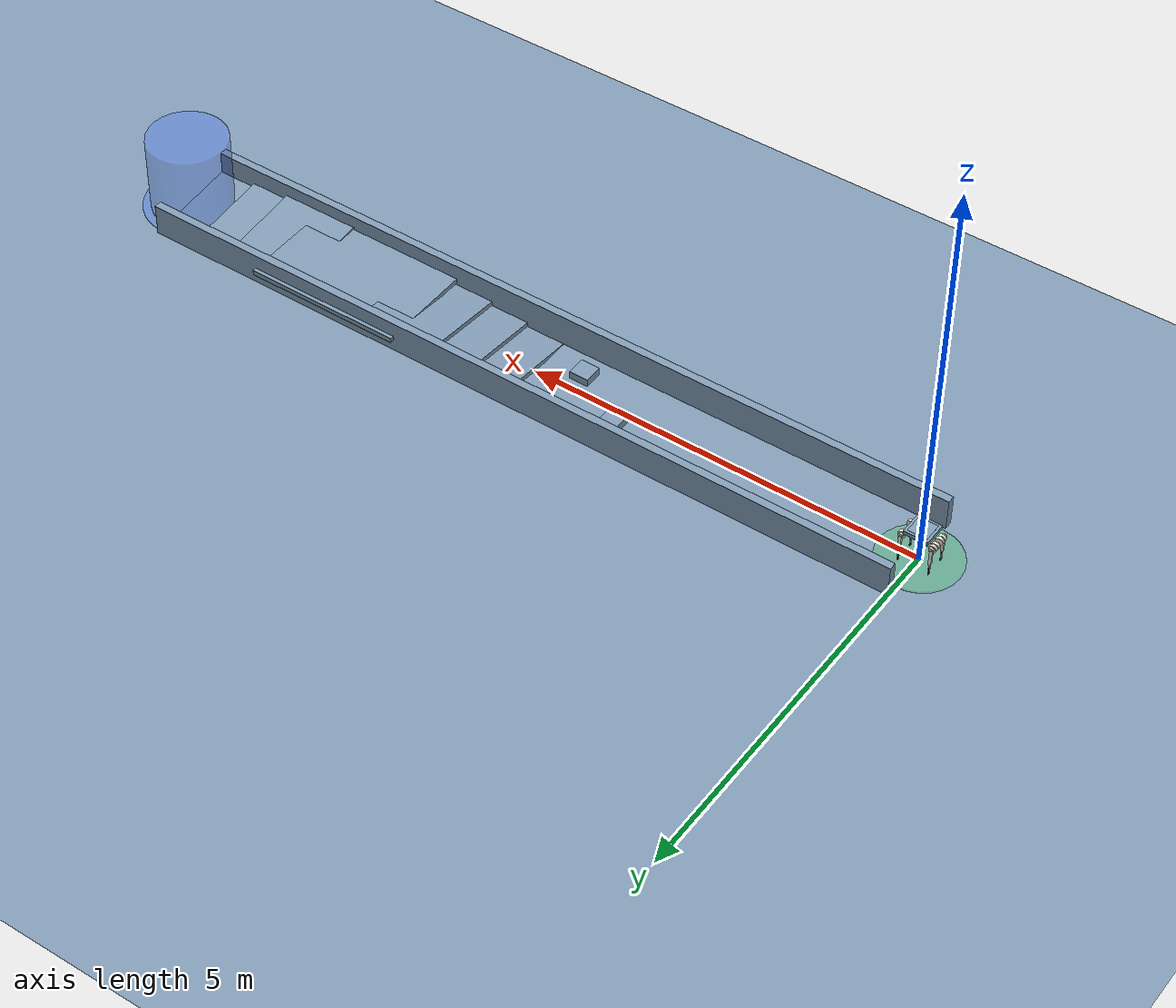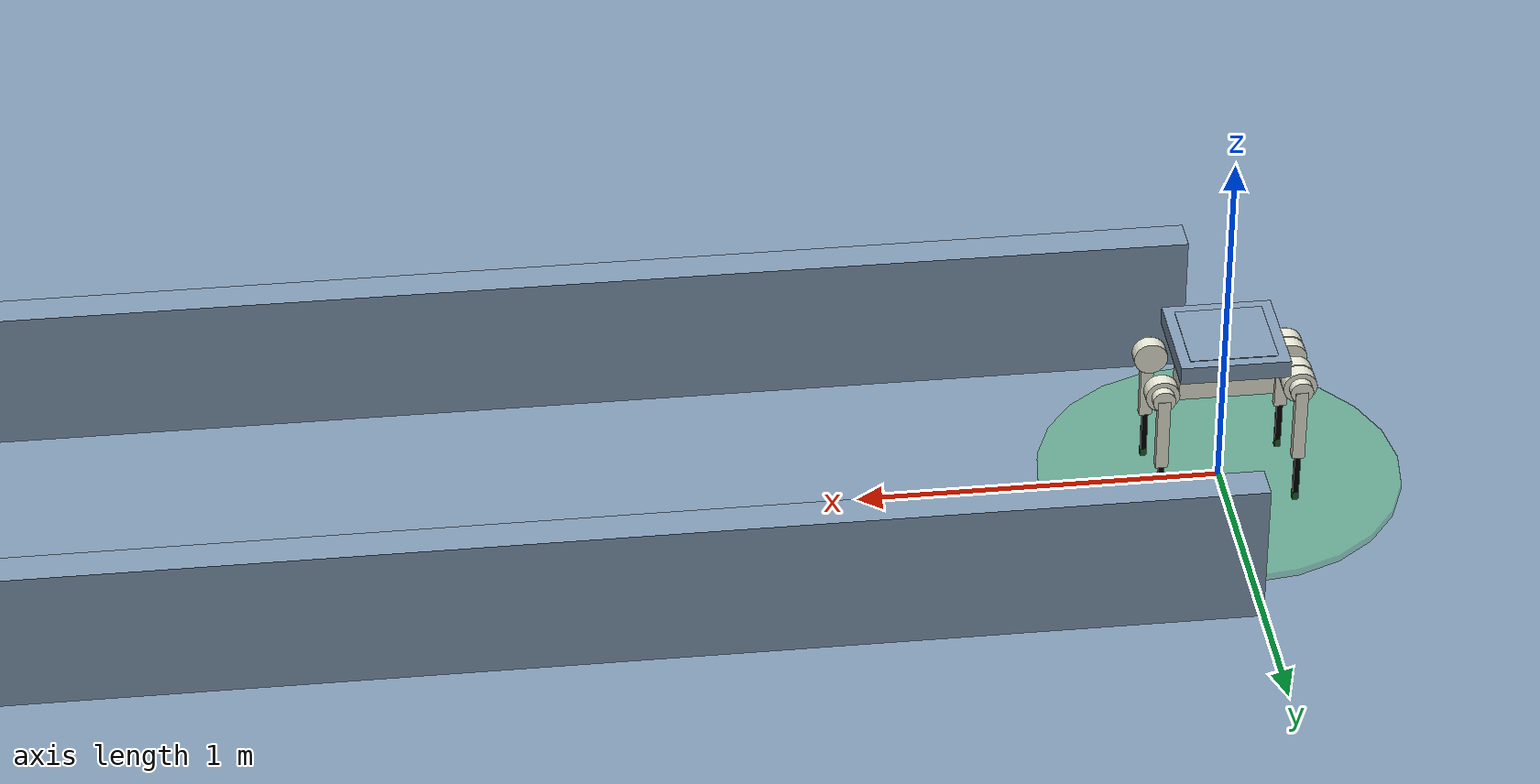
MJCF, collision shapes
<mujoco model="go1_pizza_stage2">
    <compiler angle="radian" meshdir="meshes" autolimits="true"/>

    <option timestep="0.005" solver="PGS" gravity="0 0 -9.81"/>

    <default>
        <geom contype="1" conaffinity="1" friction="0.6 0.3 0.3" rgba="0.5 0.6 0.7 1" group="0"/>
        <motor ctrlrange="-33.5 33.5" ctrllimited="true"/>
        <joint damping="0.01" armature="0.01" frictionloss="0.2" />
    </default>

    <asset>
        <mesh name="trunk" file="trunk.obj" />
        <mesh name="hip" file="hip.obj" />
        <mesh name="thigh_mirror" file="thigh_mirror.obj" />
        <mesh name="calf" file="calf.obj" />
        <mesh name="thigh" file="thigh.obj" />

        <texture type="skybox" builtin="gradient" rgb1="1 1 1" rgb2="1 1 1" width="512" height="512"/>
        <texture type="2d" name="groundplane" builtin="checker" rgb1="1 1 1" rgb2="0.96 0.96 0.96" width="512" height="512"/>
        <texture type="2d" name="obstacle_checker" builtin="checker" rgb1="0.9 0.9 0.9" rgb2="0.8 0.8 0.8" width="512" height="512"/>
        <texture type="2d" name="pizza_texture" file="pizza.png"/>
        <material name="groundplane" texture="groundplane" texrepeat="30 30" reflectance="0.1"/>
        <material name="grid_material" texture="obstacle_checker" texrepeat="3 3"/>
        <material name="pizza_box" rgba="0.85 0.2 0.1 1"/>
        <material name="pizza_top" texture="pizza_texture" texrepeat="1 1"/>
    </asset>

    <visual>
        <rgba com="0.502 1.0 0 0.5" contactforce="0.98 0.4 0.4 0.7" contactpoint="1.0 1.0 0.6 0.4"/>
        <scale com="0.2" forcewidth="0.035" contactwidth="0.10" contactheight="0.04"/>
    </visual>

    <worldbody>
        <light directional="true" diffuse=".8 .8 .8" pos="0 0 10" dir="0 0 -10"/>
        <camera name="track" mode="trackcom" pos="0 -1.3 1.6" xyaxes="1 0 0 0 0.707 0.707"/>
        <geom name="floor" size="0 0 0.05" type="plane" material="groundplane"/>

        <!-- Start Zone -->
        <geom name="start_zone" type="cylinder" pos="0 0 0.01" size="0.5 0.01" rgba="0.2 0.8 0.3 0.3" contype="0" conaffinity="0"/>

        <!-- STAGE 2: Easier Obstacle Course with Full Walls -->

        <!-- Full-length walls along the entire path (0-10m) -->
        <geom name="wall_left_full" type="box" pos="5 0.6 0.2" size="5 0.05 0.2" material="grid_material"/>
        <geom name="wall_right_full" type="box" pos="5 -0.6 0.2" size="5 0.05 0.2" material="grid_material"/>

        <!-- Section 2: Fewer and smaller obstacles (3-5m) -->
        <geom name="obstacle_1" type="box" pos="3.8 0.2 0.05" size="0.12 0.12 0.05" material="grid_material"/>
        <geom name="obstacle_2" type="box" pos="4.5 -0.25 0.05" size="0.12 0.12 0.05" material="grid_material"/>

        <!-- Section 3: Gentle uphill ramp (5-7m) -->
        <geom name="ramp_1" type="box" pos="5.5 0 0.03" size="0.5 0.6 0.03" quat="0.9986 0.0523 0 0" material="grid_material"/>
        <geom name="ramp_2" type="box" pos="6.0 0 0.09" size="0.5 0.6 0.03" quat="0.9986 0.0523 0 0" material="grid_material"/>
        <geom name="ramp_3" type="box" pos="6.5 0 0.15" size="0.5 0.6 0.03" quat="0.9986 0.0523 0 0" material="grid_material"/>

        <!-- Section 4: Lower platform (7-8m) -->
        <geom name="platform" type="box" pos="7.5 0 0.18" size="1.0 0.7 0.03" material="grid_material"/>

        <!-- Section 5: Gentle downhill (8-10m) -->
        <geom name="down_1" type="box" pos="8.5 0 0.15" size="0.5 0.6 0.03" quat="0.9986 -0.0523 0 0" material="grid_material"/>
        <geom name="down_2" type="box" pos="9.0 0 0.09" size="0.5 0.6 0.03" quat="0.9986 -0.0523 0 0" material="grid_material"/>
        <geom name="down_3" type="box" pos="9.5 0 0.03" size="0.5 0.6 0.03" quat="0.9986 -0.0523 0 0" material="grid_material"/>

        <!-- Goal Zone -->
        <geom name="goal_zone" type="cylinder" pos="10 0 0.01" size="0.6 0.01" rgba="0.2 0.4 1 0.3" contype="0" conaffinity="0"/>

        <!-- Goal Marker (cylinder beacon) -->
        <geom name="goal_marker" type="cylinder" pos="10 0 0.5" size="0.5 0.5" rgba="0.2 0.4 1 0.3" contype="0" conaffinity="0"/>

        <!-- PIZZA BOX -->
        <body name="pizza_box" pos="0 0 0.44">
            <inertial pos="0 0 0" mass="0.5" diaginertia="0.005 0.005 0.001" />
            <joint type="free" />
            <geom name="pizza_box_geom" type="box" size="0.15 0.15 0.025" material="pizza_box" friction="1.5 0.8 0.8" />
            <geom name="pizza_label" type="box" size="0.12 0.12 0.026" pos="0 0 0.001" material="pizza_top" contype="0" conaffinity="0" />
        </body>

        <body name="trunk" pos="0 0 0.35">
            <inertial pos="0.0116053 0.00442221 0.000106692" quat="0.0111438 0.707126 -0.00935374 0.706938" mass="4.801" diaginertia="0.0447997 0.0366257 0.0162187" />
            <joint type="free" />
            <geom type="mesh" contype="0" conaffinity="0" group="1" rgba="0.913725 0.913725 0.847059 1" mesh="trunk" />
            <geom size="0.13 0.04675 0.057" type="box" rgba="0.913725 0.913725 0.847059 1" friction="1.5 0.8 0.8" />
            <geom size="0.0005 0.0005 0.0005" pos="-0.01592 -0.06659 -0.00617" type="box" contype="0" conaffinity="0" group="1" rgba="0.8 0 0 0" />
            <geom size="0.0005 0.0005 0.0005" pos="-0.01592 -0.06659 -0.00617" type="box" rgba="0.8 0 0 0" />
            <site name="imu" pos="0 0 0"/>

            <body name="FR_hip" pos="0.1881 -0.04675 0">
                <inertial pos="-0.00406411 -0.0193463 4.50733e-06" quat="0.467526 0.531662 -0.466259 0.530431" mass="0.679292" diaginertia="0.00131334 0.00122648 0.000728484" />
                <joint name="FR_hip_joint" pos="0 0 0" axis="1 0 0" limited="true" range="-0.802851 0.802851" />
                <geom quat="0 1 0 0" type="mesh" contype="0" conaffinity="0" group="1" rgba="0.913725 0.913725 0.847059 1" mesh="hip" />
                <geom size="0.046 0.02" pos="0 -0.045 0" quat="0.707107 0.707107 0 0" type="cylinder" rgba="0.913725 0.913725 0.847059 0" />
                <geom size="0.031 0.02" pos="0 -0.07 0" quat="0.707107 0.707107 0 0" type="cylinder" rgba="0.913725 0.913725 0.847059 0" />

                <body name="FR_thigh" pos="0 -0.08 0">
                    <inertial pos="-0.003468 0.018947 -0.032736" quat="0.999266 0.00067676 -0.0382978 0.000639813" mass="0.898919" diaginertia="0.00542178 0.00514246 0.000998869" />
                    <joint name="FR_thigh_joint" pos="0 0 0" axis="0 1 0" limited="true" range="-1.0472 4.18879" />
                    <geom type="mesh" contype="0" conaffinity="0" group="1" rgba="0.913725 0.913725 0.847059 1" mesh="thigh_mirror" />
                    <geom size="0.1065 0.01225 0.017" pos="0 0 -0.1065" quat="0.707107 0 0.707107 0" type="box" rgba="0.913725 0.913725 0.847059 0" />
                    <body name="FR_calf" pos="0 0 -0.213">
                        <inertial pos="0.00455603 0.0009473 -0.147239" quat="0.762045 0.00970173 0.0180098 0.647201" mass="0.218015" diaginertia="0.00399678 0.00398122 3.99428e-05" />
                        <joint name="FR_calf_joint" pos="0 0 0" axis="0 1 0" limited="true" range="-2.69653 -0.916298" />
                        <geom type="mesh" contype="0" conaffinity="0" group="1" rgba="0 0 0 1" mesh="calf" />
                        <geom size="0.1065 0.008 0.008" pos="0 0 -0.1065" quat="0.707107 0 0.707107 0" type="box" rgba="0 0 0 0" />
                        <geom size="0.01" pos="0 0 -0.213" contype="0" conaffinity="0" group="1" rgba="0 0 0 1" />
                        <geom size="0.02" pos="0 0 -0.213" rgba="0 0 0 1" />
                    </body>
                </body>
            </body>
            <body name="FL_hip" pos="0.1881 0.04675 0">
                <inertial pos="-0.00406411 0.0193463 4.50733e-06" quat="0.531662 0.467526 -0.530431 0.466259" mass="0.679292" diaginertia="0.00131334 0.00122648 0.000728484" />
                <joint name="FL_hip_joint" pos="0 0 0" axis="1 0 0" limited="true" range="-0.802851 0.802851" />
                <geom type="mesh" contype="0" conaffinity="0" group="1" rgba="0.913725 0.913725 0.847059 1" mesh="hip" />
                <geom size="0.046 0.02" pos="0 0.045 0" quat="0.707107 0.707107 0 0" type="cylinder" rgba="0.913725 0.913725 0.847059 0" />
                <geom size="0.031 0.02" pos="0 0.07 0" quat="0.707107 0.707107 0 0" type="cylinder" rgba="0.913725 0.913725 0.847059 0" />

                <body name="FL_thigh" pos="0 0.08 0">
                    <inertial pos="-0.003468 -0.018947 -0.032736" quat="0.999266 -0.00067676 -0.0382978 -0.000639813" mass="0.898919" diaginertia="0.00542178 0.00514246 0.000998869" />
                    <joint name="FL_thigh_joint" pos="0 0 0" axis="0 1 0" limited="true" range="-1.0472 4.18879" />
                    <geom type="mesh" contype="0" conaffinity="0" group="1" rgba="0.913725 0.913725 0.847059 1" mesh="thigh" />
                    <geom size="0.1065 0.01225 0.017" pos="0 0 -0.1065" quat="0.707107 0 0.707107 0" type="box" rgba="0.913725 0.913725 0.847059 0" />
                    <body name="FL_calf" pos="0 0 -0.213">
                        <inertial pos="0.00455603 0.0009473 -0.147239" quat="0.762045 0.00970173 0.0180098 0.647201" mass="0.218015" diaginertia="0.00399678 0.00398122 3.99428e-05" />
                        <joint name="FL_calf_joint" pos="0 0 0" axis="0 1 0" limited="true" range="-2.69653 -0.916298" />
                        <geom type="mesh" contype="0" conaffinity="0" group="1" rgba="0 0 0 1" mesh="calf" />
                        <geom size="0.1065 0.008 0.008" pos="0 0 -0.1065" quat="0.707107 0 0.707107 0" type="box" rgba="0 0 0 0" />
                        <geom size="0.01" pos="0 0 -0.213" contype="0" conaffinity="0" group="1" rgba="0 0 0 1" />
                        <geom size="0.02" pos="0 0 -0.213" rgba="0 0 0 1" />
                    </body>
                </body>
            </body>
            <body name="RR_hip" pos="-0.1881 -0.04675 0">
                <inertial pos="0.00406411 -0.0193463 4.50733e-06" quat="0.530431 0.466259 -0.531662 0.467526" mass="0.679292" diaginertia="0.00131334 0.00122648 0.000728484" />
                <joint name="RR_hip_joint" pos="0 0 0" axis="1 0 0" limited="true" range="-0.802851 0.802851" />
                <geom quat="0 0 0 -1" type="mesh" contype="0" conaffinity="0" group="1" rgba="0.913725 0.913725 0.847059 1" mesh="hip" />
                <geom size="0.046 0.02" quat="0.707107 0.707107 0 0" type="cylinder" rgba="0.913725 0.913725 0.847059 1" />
                <geom size="0.046 0.02" pos="0 -0.045 0" quat="0.707107 0.707107 0 0" type="cylinder" rgba="0.913725 0.913725 0.847059 0" />
                <geom size="0.031 0.02" pos="0 -0.07 0" quat="0.707107 0.707107 0 0" type="cylinder" rgba="0.913725 0.913725 0.847059 0" />

                <body name="RR_thigh" pos="0 -0.08 0">
                    <inertial pos="-0.003468 0.018947 -0.032736" quat="0.999266 0.00067676 -0.0382978 0.000639813" mass="0.898919" diaginertia="0.00542178 0.00514246 0.000998869" />
                    <joint name="RR_thigh_joint" pos="0 0 0" axis="0 1 0" limited="true" range="-1.0472 4.18879" />
                    <geom type="mesh" contype="0" conaffinity="0" group="1" rgba="0.913725 0.913725 0.847059 1" mesh="thigh_mirror" />
                    <geom size="0.1065 0.01225 0.017" pos="0 0 -0.1065" quat="0.707107 0 0.707107 0" type="box" rgba="0.913725 0.913725 0.847059 0" />
                    <body name="RR_calf" pos="0 0 -0.213">
                        <inertial pos="0.00455603 0.0009473 -0.147239" quat="0.762045 0.00970173 0.0180098 0.647201" mass="0.218015" diaginertia="0.00399678 0.00398122 3.99428e-05" />
                        <joint name="RR_calf_joint" pos="0 0 0" axis="0 1 0" limited="true" range="-2.69653 -0.916298" />
                        <geom type="mesh" contype="0" conaffinity="0" group="1" rgba="0 0 0 1" mesh="calf" />
                        <geom size="0.1065 0.008 0.008" pos="0 0 -0.1065" quat="0.707107 0 0.707107 0" type="box" rgba="0 0 0 0" />
                        <geom size="0.01" pos="0 0 -0.213" contype="0" conaffinity="0" group="1" rgba="0 0 0 1" />
                        <geom size="0.02" pos="0 0 -0.213" rgba="0 0 0 1" />
                    </body>
                </body>
            </body>
            <body name="RL_hip" pos="-0.1881 0.04675 0">
                <inertial pos="0.00406411 0.0193463 4.50733e-06" quat="0.466259 0.530431 -0.467526 0.531662" mass="0.679292" diaginertia="0.00131334 0.00122648 0.000728484" />
                <joint name="RL_hip_joint" pos="0 0 0" axis="1 0 0" limited="true" range="-0.802851 0.802851"  />
                <geom quat="0 0 1 0" type="mesh" contype="0" conaffinity="0" group="1" rgba="0.913725 0.913725 0.847059 1" mesh="hip" />
                <geom size="0.046 0.02" quat="0.707107 0.707107 0 0" type="cylinder" rgba="0.913725 0.913725 0.847059 1" />
                <geom size="0.046 0.02" pos="0 0.045 0" quat="0.707107 0.707107 0 0" type="cylinder" rgba="0.913725 0.913725 0.847059 0" />
                <geom size="0.031 0.02" pos="0 0.07 0" quat="0.707107 0.707107 0 0" type="cylinder" rgba="0.913725 0.913725 0.847059 0" />

                <body name="RL_thigh" pos="0 0.08 0">
                    <inertial pos="-0.003468 -0.018947 -0.032736" quat="0.999266 -0.00067676 -0.0382978 -0.000639813" mass="0.898919" diaginertia="0.00542178 0.00514246 0.000998869" />
                    <joint name="RL_thigh_joint" pos="0 0 0" axis="0 1 0" limited="true" range="-1.0472 4.18879" />
                    <geom type="mesh" contype="0" conaffinity="0" group="1" rgba="0.913725 0.913725 0.847059 1" mesh="thigh" />
                    <geom size="0.1065 0.01225 0.017" pos="0 0 -0.1065" quat="0.707107 0 0.707107 0" type="box" rgba="0.913725 0.913725 0.847059 0" />
                    <body name="RL_calf" pos="0 0 -0.213">
                        <inertial pos="0.00455603 0.0009473 -0.147239" quat="0.762045 0.00970173 0.0180098 0.647201" mass="0.218015" diaginertia="0.00399678 0.00398122 3.99428e-05" />
                        <joint name="RL_calf_joint" pos="0 0 0" axis="0 1 0" limited="true" range="-2.69653 -0.916298" />
                        <geom type="mesh" contype="0" conaffinity="0" group="1" rgba="0 0 0 1" mesh="calf" />
                        <geom size="0.1065 0.008 0.008" pos="0 0 -0.1065" quat="0.707107 0 0.707107 0" type="box" rgba="0 0 0 0" />
                        <geom size="0.01" pos="0 0 -0.213" contype="0" conaffinity="0" group="1" rgba="0 0 0 1" />
                        <geom size="0.02" pos="0 0 -0.213" rgba="0 0 0 1" />
                    </body>
                </body>
            </body>
        </body>
    </worldbody>
    <actuator>

        <motor name="FR_hip"       gear="1" joint="FR_hip_joint"/>
        <motor name="FR_thigh"     gear="1" joint="FR_thigh_joint"/>
        <motor name="FR_calf"      gear="1" joint="FR_calf_joint"/>
        <motor name="FL_hip"       gear="1" joint="FL_hip_joint"/>
        <motor name="FL_thigh"     gear="1" joint="FL_thigh_joint"/>
        <motor name="FL_calf"      gear="1" joint="FL_calf_joint"/>
        <motor name="RR_hip"       gear="1" joint="RR_hip_joint"/>
        <motor name="RR_thigh"     gear="1" joint="RR_thigh_joint"/>
        <motor name="RR_calf"      gear="1" joint="RR_calf_joint" />
        <motor name="RL_hip"       gear="1" joint="RL_hip_joint"/>
        <motor name="RL_thigh"     gear="1" joint="RL_thigh_joint"/>
        <motor name="RL_calf"      gear="1" joint="RL_calf_joint"/>
    </actuator>
</mujoco>
